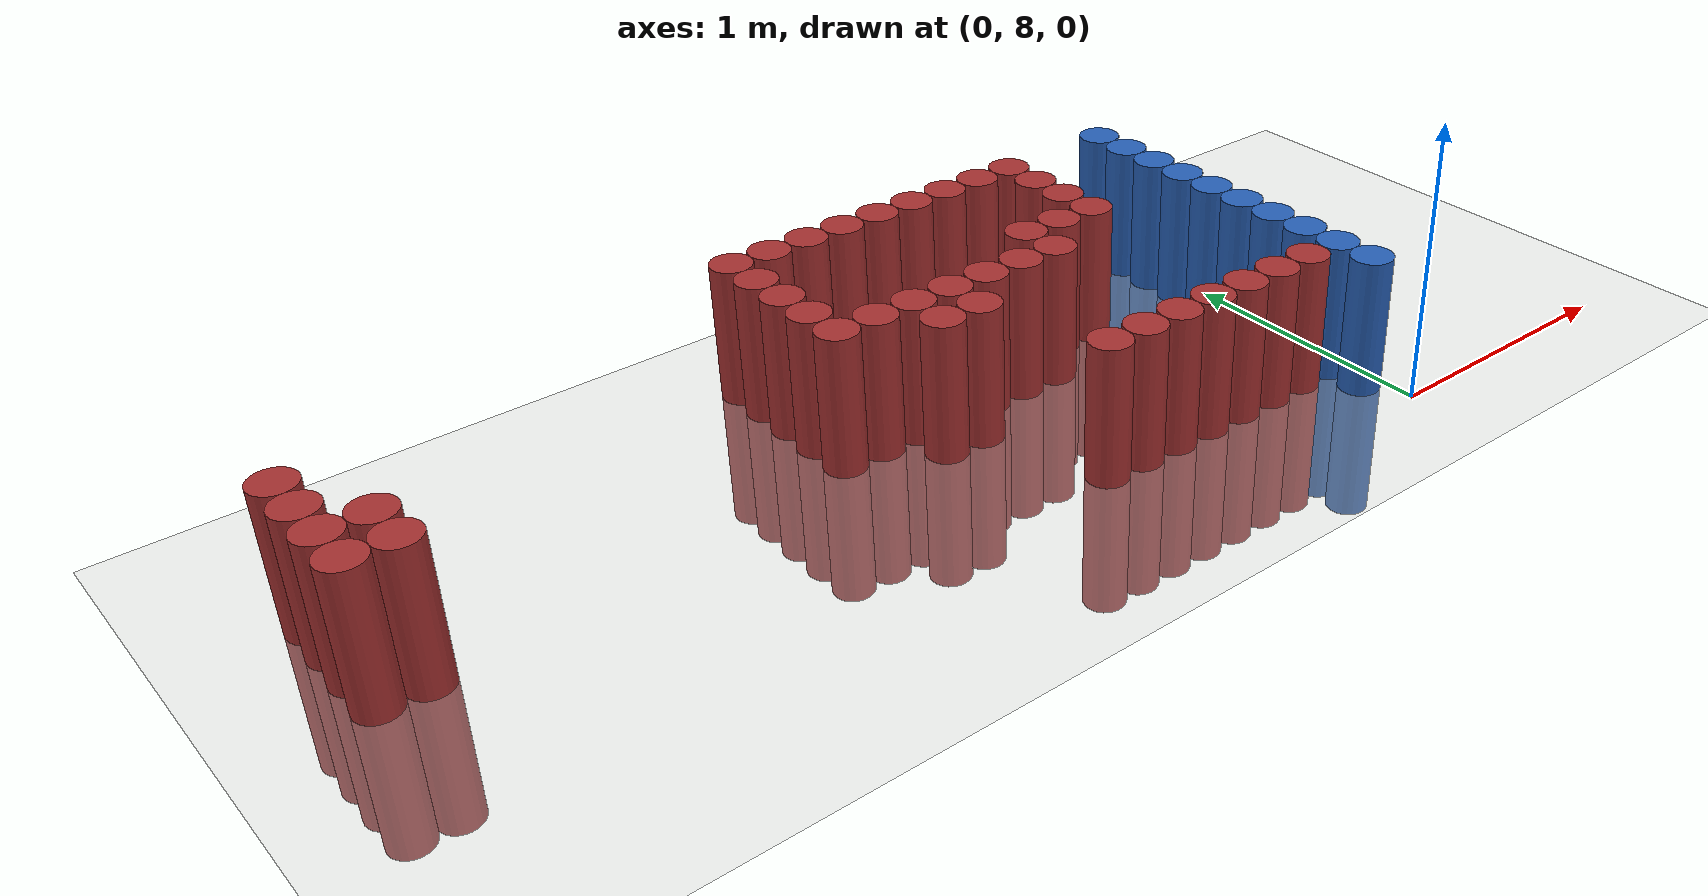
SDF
<sdf version="1.6">
 <world name="default">
  <model name="ground_plane">
   <static>1</static>
   <link name="link">
    <collision name="collision">
     <geometry><plane><normal>0 0 1</normal><size>100 100</size></plane></geometry>
     <surface><friction><ode><mu>100</mu><mu2>50</mu2></ode></friction></surface>
    </collision>
    <visual name="visual">
     <cast_shadows>0</cast_shadows>
     <geometry><plane><normal>0 0 1</normal><size>100 100</size></plane></geometry>
     <material>
      <script><uri>file://media/materials/scripts/gazebo.material</uri><name>Gazebo/Grey</name></script>
     </material>
    </visual>
   </link>
  </model>
  <model name="unit_cylinder_160">
   <static>1</static>
   <pose>-3.375000 8.775000 0.000000 0.000000 0.000000 0.000000</pose>
   <link name="link">
    <inertial>
     <mass>1</mass>
     <inertia><ixx>0.145833</ixx><ixy>0</ixy><ixz>0</ixz><iyy>0.145833</iyy><iyz>0</iyz><izz>0.125</izz></inertia>
    </inertial>
    <collision name="collision">
     <geometry><cylinder><radius>0.075000</radius><length>1</length></cylinder></geometry>
    </collision>
    <visual name="visual">
     <geometry><cylinder><radius>0.075000</radius><length>1</length></cylinder></geometry>
     <material>
      <ambient>0.648000 0.192000 0.192000 1</ambient>
      <diffuse>0.648000 0.192000 0.192000 1</diffuse>
     </material>
     <material>
      <script><name>Gazebo/Grey</name><uri>file://media/materials/scripts/gazebo.material</uri></script>
     </material>
    </visual>
   </link>
  </model>
  <model name="unit_cylinder_161">
   <static>1</static>
   <pose>-3.375000 8.925000 0.000000 0.000000 0.000000 0.000000</pose>
   <link name="link">
    <inertial>
     <mass>1</mass>
     <inertia><ixx>0.145833</ixx><ixy>0</ixy><ixz>0</ixz><iyy>0.145833</iyy><iyz>0</iyz><izz>0.125</izz></inertia>
    </inertial>
    <collision name="collision">
     <geometry><cylinder><radius>0.075000</radius><length>1</length></cylinder></geometry>
    </collision>
    <visual name="visual">
     <geometry><cylinder><radius>0.075000</radius><length>1</length></cylinder></geometry>
     <material>
      <ambient>0.648000 0.192000 0.192000 1</ambient>
      <diffuse>0.648000 0.192000 0.192000 1</diffuse>
     </material>
     <material>
      <script><name>Gazebo/Grey</name><uri>file://media/materials/scripts/gazebo.material</uri></script>
     </material>
    </visual>
   </link>
  </model>
  <model name="unit_cylinder_162">
   <static>1</static>
   <pose>-3.375000 9.075000 0.000000 0.000000 0.000000 0.000000</pose>
   <link name="link">
    <inertial>
     <mass>1</mass>
     <inertia><ixx>0.145833</ixx><ixy>0</ixy><ixz>0</ixz><iyy>0.145833</iyy><iyz>0</iyz><izz>0.125</izz></inertia>
    </inertial>
    <collision name="collision">
     <geometry><cylinder><radius>0.075000</radius><length>1</length></cylinder></geometry>
    </collision>
    <visual name="visual">
     <geometry><cylinder><radius>0.075000</radius><length>1</length></cylinder></geometry>
     <material>
      <ambient>0.648000 0.192000 0.192000 1</ambient>
      <diffuse>0.648000 0.192000 0.192000 1</diffuse>
     </material>
     <material>
      <script><name>Gazebo/Grey</name><uri>file://media/materials/scripts/gazebo.material</uri></script>
     </material>
    </visual>
   </link>
  </model>
  <model name="unit_cylinder_163">
   <static>1</static>
   <pose>-3.375000 9.225000 0.000000 0.000000 0.000000 0.000000</pose>
   <link name="link">
    <inertial>
     <mass>1</mass>
     <inertia><ixx>0.145833</ixx><ixy>0</ixy><ixz>0</ixz><iyy>0.145833</iyy><iyz>0</iyz><izz>0.125</izz></inertia>
    </inertial>
    <collision name="collision">
     <geometry><cylinder><radius>0.075000</radius><length>1</length></cylinder></geometry>
    </collision>
    <visual name="visual">
     <geometry><cylinder><radius>0.075000</radius><length>1</length></cylinder></geometry>
     <material>
      <ambient>0.648000 0.192000 0.192000 1</ambient>
      <diffuse>0.648000 0.192000 0.192000 1</diffuse>
     </material>
     <material>
      <script><name>Gazebo/Grey</name><uri>file://media/materials/scripts/gazebo.material</uri></script>
     </material>
    </visual>
   </link>
  </model>
  <model name="unit_cylinder_167">
   <static>1</static>
   <pose>-3.225000 8.775000 0.000000 0.000000 0.000000 0.000000</pose>
   <link name="link">
    <inertial>
     <mass>1</mass>
     <inertia><ixx>0.145833</ixx><ixy>0</ixy><ixz>0</ixz><iyy>0.145833</iyy><iyz>0</iyz><izz>0.125</izz></inertia>
    </inertial>
    <collision name="collision">
     <geometry><cylinder><radius>0.075000</radius><length>1</length></cylinder></geometry>
    </collision>
    <visual name="visual">
     <geometry><cylinder><radius>0.075000</radius><length>1</length></cylinder></geometry>
     <material>
      <ambient>0.648000 0.192000 0.192000 1</ambient>
      <diffuse>0.648000 0.192000 0.192000 1</diffuse>
     </material>
     <material>
      <script><name>Gazebo/Grey</name><uri>file://media/materials/scripts/gazebo.material</uri></script>
     </material>
    </visual>
   </link>
  </model>
  <model name="unit_cylinder_168">
   <static>1</static>
   <pose>-3.225000 8.925000 0.000000 0.000000 0.000000 0.000000</pose>
   <link name="link">
    <inertial>
     <mass>1</mass>
     <inertia><ixx>0.145833</ixx><ixy>0</ixy><ixz>0</ixz><iyy>0.145833</iyy><iyz>0</iyz><izz>0.125</izz></inertia>
    </inertial>
    <collision name="collision">
     <geometry><cylinder><radius>0.075000</radius><length>1</length></cylinder></geometry>
    </collision>
    <visual name="visual">
     <geometry><cylinder><radius>0.075000</radius><length>1</length></cylinder></geometry>
     <material>
      <ambient>0.648000 0.192000 0.192000 1</ambient>
      <diffuse>0.648000 0.192000 0.192000 1</diffuse>
     </material>
     <material>
      <script><name>Gazebo/Grey</name><uri>file://media/materials/scripts/gazebo.material</uri></script>
     </material>
    </visual>
   </link>
  </model>
  <model name="unit_cylinder_199">
   <static>1</static>
   <pose>-1.725000 8.925000 0.000000 0.000000 0.000000 0.000000</pose>
   <link name="link">
    <inertial>
     <mass>1</mass>
     <inertia><ixx>0.145833</ixx><ixy>0</ixy><ixz>0</ixz><iyy>0.145833</iyy><iyz>0</iyz><izz>0.125</izz></inertia>
    </inertial>
    <collision name="collision">
     <geometry><cylinder><radius>0.075000</radius><length>1</length></cylinder></geometry>
    </collision>
    <visual name="visual">
     <geometry><cylinder><radius>0.075000</radius><length>1</length></cylinder></geometry>
     <material>
      <ambient>0.648000 0.192000 0.192000 1</ambient>
      <diffuse>0.648000 0.192000 0.192000 1</diffuse>
     </material>
     <material>
      <script><name>Gazebo/Grey</name><uri>file://media/materials/scripts/gazebo.material</uri></script>
     </material>
    </visual>
   </link>
  </model>
  <model name="unit_cylinder_200">
   <static>1</static>
   <pose>-1.725000 9.075000 0.000000 0.000000 0.000000 0.000000</pose>
   <link name="link">
    <inertial>
     <mass>1</mass>
     <inertia><ixx>0.145833</ixx><ixy>0</ixy><ixz>0</ixz><iyy>0.145833</iyy><iyz>0</iyz><izz>0.125</izz></inertia>
    </inertial>
    <collision name="collision">
     <geometry><cylinder><radius>0.075000</radius><length>1</length></cylinder></geometry>
    </collision>
    <visual name="visual">
     <geometry><cylinder><radius>0.075000</radius><length>1</length></cylinder></geometry>
     <material>
      <ambient>0.648000 0.192000 0.192000 1</ambient>
      <diffuse>0.648000 0.192000 0.192000 1</diffuse>
     </material>
     <material>
      <script><name>Gazebo/Grey</name><uri>file://media/materials/scripts/gazebo.material</uri></script>
     </material>
    </visual>
   </link>
  </model>
  <model name="unit_cylinder_201">
   <static>1</static>
   <pose>-1.725000 9.225000 0.000000 0.000000 0.000000 0.000000</pose>
   <link name="link">
    <inertial>
     <mass>1</mass>
     <inertia><ixx>0.145833</ixx><ixy>0</ixy><ixz>0</ixz><iyy>0.145833</iyy><iyz>0</iyz><izz>0.125</izz></inertia>
    </inertial>
    <collision name="collision">
     <geometry><cylinder><radius>0.075000</radius><length>1</length></cylinder></geometry>
    </collision>
    <visual name="visual">
     <geometry><cylinder><radius>0.075000</radius><length>1</length></cylinder></geometry>
     <material>
      <ambient>0.648000 0.192000 0.192000 1</ambient>
      <diffuse>0.648000 0.192000 0.192000 1</diffuse>
     </material>
     <material>
      <script><name>Gazebo/Grey</name><uri>file://media/materials/scripts/gazebo.material</uri></script>
     </material>
    </visual>
   </link>
  </model>
  <model name="unit_cylinder_202">
   <static>1</static>
   <pose>-1.725000 9.375000 0.000000 0.000000 0.000000 0.000000</pose>
   <link name="link">
    <inertial>
     <mass>1</mass>
     <inertia><ixx>0.145833</ixx><ixy>0</ixy><ixz>0</ixz><iyy>0.145833</iyy><iyz>0</iyz><izz>0.125</izz></inertia>
    </inertial>
    <collision name="collision">
     <geometry><cylinder><radius>0.075000</radius><length>1</length></cylinder></geometry>
    </collision>
    <visual name="visual">
     <geometry><cylinder><radius>0.075000</radius><length>1</length></cylinder></geometry>
     <material>
      <ambient>0.648000 0.192000 0.192000 1</ambient>
      <diffuse>0.648000 0.192000 0.192000 1</diffuse>
     </material>
     <material>
      <script><name>Gazebo/Grey</name><uri>file://media/materials/scripts/gazebo.material</uri></script>
     </material>
    </visual>
   </link>
  </model>
  <model name="unit_cylinder_203">
   <static>1</static>
   <pose>-1.725000 9.525000 0.000000 0.000000 0.000000 0.000000</pose>
   <link name="link">
    <inertial>
     <mass>1</mass>
     <inertia><ixx>0.145833</ixx><ixy>0</ixy><ixz>0</ixz><iyy>0.145833</iyy><iyz>0</iyz><izz>0.125</izz></inertia>
    </inertial>
    <collision name="collision">
     <geometry><cylinder><radius>0.075000</radius><length>1</length></cylinder></geometry>
    </collision>
    <visual name="visual">
     <geometry><cylinder><radius>0.075000</radius><length>1</length></cylinder></geometry>
     <material>
      <ambient>0.648000 0.192000 0.192000 1</ambient>
      <diffuse>0.648000 0.192000 0.192000 1</diffuse>
     </material>
     <material>
      <script><name>Gazebo/Grey</name><uri>file://media/materials/scripts/gazebo.material</uri></script>
     </material>
    </visual>
   </link>
  </model>
  <model name="unit_cylinder_206">
   <static>1</static>
   <pose>-1.575000 8.925000 0.000000 0.000000 0.000000 0.000000</pose>
   <link name="link">
    <inertial>
     <mass>1</mass>
     <inertia><ixx>0.145833</ixx><ixy>0</ixy><ixz>0</ixz><iyy>0.145833</iyy><iyz>0</iyz><izz>0.125</izz></inertia>
    </inertial>
    <collision name="collision">
     <geometry><cylinder><radius>0.075000</radius><length>1</length></cylinder></geometry>
    </collision>
    <visual name="visual">
     <geometry><cylinder><radius>0.075000</radius><length>1</length></cylinder></geometry>
     <material>
      <ambient>0.648000 0.192000 0.192000 1</ambient>
      <diffuse>0.648000 0.192000 0.192000 1</diffuse>
     </material>
     <material>
      <script><name>Gazebo/Grey</name><uri>file://media/materials/scripts/gazebo.material</uri></script>
     </material>
    </visual>
   </link>
  </model>
  <model name="unit_cylinder_207">
   <static>1</static>
   <pose>-1.575000 9.525000 0.000000 0.000000 0.000000 0.000000</pose>
   <link name="link">
    <inertial>
     <mass>1</mass>
     <inertia><ixx>0.145833</ixx><ixy>0</ixy><ixz>0</ixz><iyy>0.145833</iyy><iyz>0</iyz><izz>0.125</izz></inertia>
    </inertial>
    <collision name="collision">
     <geometry><cylinder><radius>0.075000</radius><length>1</length></cylinder></geometry>
    </collision>
    <visual name="visual">
     <geometry><cylinder><radius>0.075000</radius><length>1</length></cylinder></geometry>
     <material>
      <ambient>0.648000 0.192000 0.192000 1</ambient>
      <diffuse>0.648000 0.192000 0.192000 1</diffuse>
     </material>
     <material>
      <script><name>Gazebo/Grey</name><uri>file://media/materials/scripts/gazebo.material</uri></script>
     </material>
    </visual>
   </link>
  </model>
  <model name="unit_cylinder_210">
   <static>1</static>
   <pose>-1.425000 8.775000 0.000000 0.000000 0.000000 0.000000</pose>
   <link name="link">
    <inertial>
     <mass>1</mass>
     <inertia><ixx>0.145833</ixx><ixy>0</ixy><ixz>0</ixz><iyy>0.145833</iyy><iyz>0</iyz><izz>0.125</izz></inertia>
    </inertial>
    <collision name="collision">
     <geometry><cylinder><radius>0.075000</radius><length>1</length></cylinder></geometry>
    </collision>
    <visual name="visual">
     <geometry><cylinder><radius>0.075000</radius><length>1</length></cylinder></geometry>
     <material>
      <ambient>0.648000 0.192000 0.192000 1</ambient>
      <diffuse>0.648000 0.192000 0.192000 1</diffuse>
     </material>
     <material>
      <script><name>Gazebo/Grey</name><uri>file://media/materials/scripts/gazebo.material</uri></script>
     </material>
    </visual>
   </link>
  </model>
  <model name="unit_cylinder_211">
   <static>1</static>
   <pose>-1.425000 8.925000 0.000000 0.000000 0.000000 0.000000</pose>
   <link name="link">
    <inertial>
     <mass>1</mass>
     <inertia><ixx>0.145833</ixx><ixy>0</ixy><ixz>0</ixz><iyy>0.145833</iyy><iyz>0</iyz><izz>0.125</izz></inertia>
    </inertial>
    <collision name="collision">
     <geometry><cylinder><radius>0.075000</radius><length>1</length></cylinder></geometry>
    </collision>
    <visual name="visual">
     <geometry><cylinder><radius>0.075000</radius><length>1</length></cylinder></geometry>
     <material>
      <ambient>0.648000 0.192000 0.192000 1</ambient>
      <diffuse>0.648000 0.192000 0.192000 1</diffuse>
     </material>
     <material>
      <script><name>Gazebo/Grey</name><uri>file://media/materials/scripts/gazebo.material</uri></script>
     </material>
    </visual>
   </link>
  </model>
  <model name="unit_cylinder_212">
   <static>1</static>
   <pose>-1.425000 9.525000 0.000000 0.000000 0.000000 0.000000</pose>
   <link name="link">
    <inertial>
     <mass>1</mass>
     <inertia><ixx>0.145833</ixx><ixy>0</ixy><ixz>0</ixz><iyy>0.145833</iyy><iyz>0</iyz><izz>0.125</izz></inertia>
    </inertial>
    <collision name="collision">
     <geometry><cylinder><radius>0.075000</radius><length>1</length></cylinder></geometry>
    </collision>
    <visual name="visual">
     <geometry><cylinder><radius>0.075000</radius><length>1</length></cylinder></geometry>
     <material>
      <ambient>0.648000 0.192000 0.192000 1</ambient>
      <diffuse>0.648000 0.192000 0.192000 1</diffuse>
     </material>
     <material>
      <script><name>Gazebo/Grey</name><uri>file://media/materials/scripts/gazebo.material</uri></script>
     </material>
    </visual>
   </link>
  </model>
  <model name="unit_cylinder_215">
   <static>1</static>
   <pose>-1.275000 8.775000 0.000000 0.000000 0.000000 0.000000</pose>
   <link name="link">
    <inertial>
     <mass>1</mass>
     <inertia><ixx>0.145833</ixx><ixy>0</ixy><ixz>0</ixz><iyy>0.145833</iyy><iyz>0</iyz><izz>0.125</izz></inertia>
    </inertial>
    <collision name="collision">
     <geometry><cylinder><radius>0.075000</radius><length>1</length></cylinder></geometry>
    </collision>
    <visual name="visual">
     <geometry><cylinder><radius>0.075000</radius><length>1</length></cylinder></geometry>
     <material>
      <ambient>0.648000 0.192000 0.192000 1</ambient>
      <diffuse>0.648000 0.192000 0.192000 1</diffuse>
     </material>
     <material>
      <script><name>Gazebo/Grey</name><uri>file://media/materials/scripts/gazebo.material</uri></script>
     </material>
    </visual>
   </link>
  </model>
  <model name="unit_cylinder_216">
   <static>1</static>
   <pose>-1.275000 8.925000 0.000000 0.000000 0.000000 0.000000</pose>
   <link name="link">
    <inertial>
     <mass>1</mass>
     <inertia><ixx>0.145833</ixx><ixy>0</ixy><ixz>0</ixz><iyy>0.145833</iyy><iyz>0</iyz><izz>0.125</izz></inertia>
    </inertial>
    <collision name="collision">
     <geometry><cylinder><radius>0.075000</radius><length>1</length></cylinder></geometry>
    </collision>
    <visual name="visual">
     <geometry><cylinder><radius>0.075000</radius><length>1</length></cylinder></geometry>
     <material>
      <ambient>0.648000 0.192000 0.192000 1</ambient>
      <diffuse>0.648000 0.192000 0.192000 1</diffuse>
     </material>
     <material>
      <script><name>Gazebo/Grey</name><uri>file://media/materials/scripts/gazebo.material</uri></script>
     </material>
    </visual>
   </link>
  </model>
  <model name="unit_cylinder_217">
   <static>1</static>
   <pose>-1.275000 9.525000 0.000000 0.000000 0.000000 0.000000</pose>
   <link name="link">
    <inertial>
     <mass>1</mass>
     <inertia><ixx>0.145833</ixx><ixy>0</ixy><ixz>0</ixz><iyy>0.145833</iyy><iyz>0</iyz><izz>0.125</izz></inertia>
    </inertial>
    <collision name="collision">
     <geometry><cylinder><radius>0.075000</radius><length>1</length></cylinder></geometry>
    </collision>
    <visual name="visual">
     <geometry><cylinder><radius>0.075000</radius><length>1</length></cylinder></geometry>
     <material>
      <ambient>0.648000 0.192000 0.192000 1</ambient>
      <diffuse>0.648000 0.192000 0.192000 1</diffuse>
     </material>
     <material>
      <script><name>Gazebo/Grey</name><uri>file://media/materials/scripts/gazebo.material</uri></script>
     </material>
    </visual>
   </link>
  </model>
  <model name="unit_cylinder_220">
   <static>1</static>
   <pose>-1.125000 8.325000 0.000000 0.000000 0.000000 0.000000</pose>
   <link name="link">
    <inertial>
     <mass>1</mass>
     <inertia><ixx>0.145833</ixx><ixy>0</ixy><ixz>0</ixz><iyy>0.145833</iyy><iyz>0</iyz><izz>0.125</izz></inertia>
    </inertial>
    <collision name="collision">
     <geometry><cylinder><radius>0.075000</radius><length>1</length></cylinder></geometry>
    </collision>
    <visual name="visual">
     <geometry><cylinder><radius>0.075000</radius><length>1</length></cylinder></geometry>
     <material>
      <ambient>0.648000 0.192000 0.192000 1</ambient>
      <diffuse>0.648000 0.192000 0.192000 1</diffuse>
     </material>
     <material>
      <script><name>Gazebo/Grey</name><uri>file://media/materials/scripts/gazebo.material</uri></script>
     </material>
    </visual>
   </link>
  </model>
  <model name="unit_cylinder_221">
   <static>1</static>
   <pose>-1.125000 8.925000 0.000000 0.000000 0.000000 0.000000</pose>
   <link name="link">
    <inertial>
     <mass>1</mass>
     <inertia><ixx>0.145833</ixx><ixy>0</ixy><ixz>0</ixz><iyy>0.145833</iyy><iyz>0</iyz><izz>0.125</izz></inertia>
    </inertial>
    <collision name="collision">
     <geometry><cylinder><radius>0.075000</radius><length>1</length></cylinder></geometry>
    </collision>
    <visual name="visual">
     <geometry><cylinder><radius>0.075000</radius><length>1</length></cylinder></geometry>
     <material>
      <ambient>0.648000 0.192000 0.192000 1</ambient>
      <diffuse>0.648000 0.192000 0.192000 1</diffuse>
     </material>
     <material>
      <script><name>Gazebo/Grey</name><uri>file://media/materials/scripts/gazebo.material</uri></script>
     </material>
    </visual>
   </link>
  </model>
  <model name="unit_cylinder_222">
   <static>1</static>
   <pose>-1.125000 9.525000 0.000000 0.000000 0.000000 0.000000</pose>
   <link name="link">
    <inertial>
     <mass>1</mass>
     <inertia><ixx>0.145833</ixx><ixy>0</ixy><ixz>0</ixz><iyy>0.145833</iyy><iyz>0</iyz><izz>0.125</izz></inertia>
    </inertial>
    <collision name="collision">
     <geometry><cylinder><radius>0.075000</radius><length>1</length></cylinder></geometry>
    </collision>
    <visual name="visual">
     <geometry><cylinder><radius>0.075000</radius><length>1</length></cylinder></geometry>
     <material>
      <ambient>0.648000 0.192000 0.192000 1</ambient>
      <diffuse>0.648000 0.192000 0.192000 1</diffuse>
     </material>
     <material>
      <script><name>Gazebo/Grey</name><uri>file://media/materials/scripts/gazebo.material</uri></script>
     </material>
    </visual>
   </link>
  </model>
  <model name="unit_cylinder_230">
   <static>1</static>
   <pose>-0.975000 8.325000 0.000000 0.000000 0.000000 0.000000</pose>
   <link name="link">
    <inertial>
     <mass>1</mass>
     <inertia><ixx>0.145833</ixx><ixy>0</ixy><ixz>0</ixz><iyy>0.145833</iyy><iyz>0</iyz><izz>0.125</izz></inertia>
    </inertial>
    <collision name="collision">
     <geometry><cylinder><radius>0.075000</radius><length>1</length></cylinder></geometry>
    </collision>
    <visual name="visual">
     <geometry><cylinder><radius>0.075000</radius><length>1</length></cylinder></geometry>
     <material>
      <ambient>0.648000 0.192000 0.192000 1</ambient>
      <diffuse>0.648000 0.192000 0.192000 1</diffuse>
     </material>
     <material>
      <script><name>Gazebo/Grey</name><uri>file://media/materials/scripts/gazebo.material</uri></script>
     </material>
    </visual>
   </link>
  </model>
  <model name="unit_cylinder_231">
   <static>1</static>
   <pose>-0.975000 8.925000 0.000000 0.000000 0.000000 0.000000</pose>
   <link name="link">
    <inertial>
     <mass>1</mass>
     <inertia><ixx>0.145833</ixx><ixy>0</ixy><ixz>0</ixz><iyy>0.145833</iyy><iyz>0</iyz><izz>0.125</izz></inertia>
    </inertial>
    <collision name="collision">
     <geometry><cylinder><radius>0.075000</radius><length>1</length></cylinder></geometry>
    </collision>
    <visual name="visual">
     <geometry><cylinder><radius>0.075000</radius><length>1</length></cylinder></geometry>
     <material>
      <ambient>0.648000 0.192000 0.192000 1</ambient>
      <diffuse>0.648000 0.192000 0.192000 1</diffuse>
     </material>
     <material>
      <script><name>Gazebo/Grey</name><uri>file://media/materials/scripts/gazebo.material</uri></script>
     </material>
    </visual>
   </link>
  </model>
  <model name="unit_cylinder_232">
   <static>1</static>
   <pose>-0.975000 9.525000 0.000000 0.000000 0.000000 0.000000</pose>
   <link name="link">
    <inertial>
     <mass>1</mass>
     <inertia><ixx>0.145833</ixx><ixy>0</ixy><ixz>0</ixz><iyy>0.145833</iyy><iyz>0</iyz><izz>0.125</izz></inertia>
    </inertial>
    <collision name="collision">
     <geometry><cylinder><radius>0.075000</radius><length>1</length></cylinder></geometry>
    </collision>
    <visual name="visual">
     <geometry><cylinder><radius>0.075000</radius><length>1</length></cylinder></geometry>
     <material>
      <ambient>0.648000 0.192000 0.192000 1</ambient>
      <diffuse>0.648000 0.192000 0.192000 1</diffuse>
     </material>
     <material>
      <script><name>Gazebo/Grey</name><uri>file://media/materials/scripts/gazebo.material</uri></script>
     </material>
    </visual>
   </link>
  </model>
  <model name="unit_cylinder_237">
   <static>1</static>
   <pose>-0.825000 8.325000 0.000000 0.000000 0.000000 0.000000</pose>
   <link name="link">
    <inertial>
     <mass>1</mass>
     <inertia><ixx>0.145833</ixx><ixy>0</ixy><ixz>0</ixz><iyy>0.145833</iyy><iyz>0</iyz><izz>0.125</izz></inertia>
    </inertial>
    <collision name="collision">
     <geometry><cylinder><radius>0.075000</radius><length>1</length></cylinder></geometry>
    </collision>
    <visual name="visual">
     <geometry><cylinder><radius>0.075000</radius><length>1</length></cylinder></geometry>
     <material>
      <ambient>0.648000 0.192000 0.192000 1</ambient>
      <diffuse>0.648000 0.192000 0.192000 1</diffuse>
     </material>
     <material>
      <script><name>Gazebo/Grey</name><uri>file://media/materials/scripts/gazebo.material</uri></script>
     </material>
    </visual>
   </link>
  </model>
  <model name="unit_cylinder_238">
   <static>1</static>
   <pose>-0.825000 8.925000 0.000000 0.000000 0.000000 0.000000</pose>
   <link name="link">
    <inertial>
     <mass>1</mass>
     <inertia><ixx>0.145833</ixx><ixy>0</ixy><ixz>0</ixz><iyy>0.145833</iyy><iyz>0</iyz><izz>0.125</izz></inertia>
    </inertial>
    <collision name="collision">
     <geometry><cylinder><radius>0.075000</radius><length>1</length></cylinder></geometry>
    </collision>
    <visual name="visual">
     <geometry><cylinder><radius>0.075000</radius><length>1</length></cylinder></geometry>
     <material>
      <ambient>0.648000 0.192000 0.192000 1</ambient>
      <diffuse>0.648000 0.192000 0.192000 1</diffuse>
     </material>
     <material>
      <script><name>Gazebo/Grey</name><uri>file://media/materials/scripts/gazebo.material</uri></script>
     </material>
    </visual>
   </link>
  </model>
  <model name="unit_cylinder_239">
   <static>1</static>
   <pose>-0.825000 9.075000 0.000000 0.000000 0.000000 0.000000</pose>
   <link name="link">
    <inertial>
     <mass>1</mass>
     <inertia><ixx>0.145833</ixx><ixy>0</ixy><ixz>0</ixz><iyy>0.145833</iyy><iyz>0</iyz><izz>0.125</izz></inertia>
    </inertial>
    <collision name="collision">
     <geometry><cylinder><radius>0.075000</radius><length>1</length></cylinder></geometry>
    </collision>
    <visual name="visual">
     <geometry><cylinder><radius>0.075000</radius><length>1</length></cylinder></geometry>
     <material>
      <ambient>0.648000 0.192000 0.192000 1</ambient>
      <diffuse>0.648000 0.192000 0.192000 1</diffuse>
     </material>
     <material>
      <script><name>Gazebo/Grey</name><uri>file://media/materials/scripts/gazebo.material</uri></script>
     </material>
    </visual>
   </link>
  </model>
  <model name="unit_cylinder_240">
   <static>1</static>
   <pose>-0.825000 9.525000 0.000000 0.000000 0.000000 0.000000</pose>
   <link name="link">
    <inertial>
     <mass>1</mass>
     <inertia><ixx>0.145833</ixx><ixy>0</ixy><ixz>0</ixz><iyy>0.145833</iyy><iyz>0</iyz><izz>0.125</izz></inertia>
    </inertial>
    <collision name="collision">
     <geometry><cylinder><radius>0.075000</radius><length>1</length></cylinder></geometry>
    </collision>
    <visual name="visual">
     <geometry><cylinder><radius>0.075000</radius><length>1</length></cylinder></geometry>
     <material>
      <ambient>0.648000 0.192000 0.192000 1</ambient>
      <diffuse>0.648000 0.192000 0.192000 1</diffuse>
     </material>
     <material>
      <script><name>Gazebo/Grey</name><uri>file://media/materials/scripts/gazebo.material</uri></script>
     </material>
    </visual>
   </link>
  </model>
  <model name="unit_cylinder_244">
   <static>1</static>
   <pose>-0.675000 8.325000 0.000000 0.000000 0.000000 0.000000</pose>
   <link name="link">
    <inertial>
     <mass>1</mass>
     <inertia><ixx>0.145833</ixx><ixy>0</ixy><ixz>0</ixz><iyy>0.145833</iyy><iyz>0</iyz><izz>0.125</izz></inertia>
    </inertial>
    <collision name="collision">
     <geometry><cylinder><radius>0.075000</radius><length>1</length></cylinder></geometry>
    </collision>
    <visual name="visual">
     <geometry><cylinder><radius>0.075000</radius><length>1</length></cylinder></geometry>
     <material>
      <ambient>0.648000 0.192000 0.192000 1</ambient>
      <diffuse>0.648000 0.192000 0.192000 1</diffuse>
     </material>
     <material>
      <script><name>Gazebo/Grey</name><uri>file://media/materials/scripts/gazebo.material</uri></script>
     </material>
    </visual>
   </link>
  </model>
  <model name="unit_cylinder_245">
   <static>1</static>
   <pose>-0.675000 9.075000 0.000000 0.000000 0.000000 0.000000</pose>
   <link name="link">
    <inertial>
     <mass>1</mass>
     <inertia><ixx>0.145833</ixx><ixy>0</ixy><ixz>0</ixz><iyy>0.145833</iyy><iyz>0</iyz><izz>0.125</izz></inertia>
    </inertial>
    <collision name="collision">
     <geometry><cylinder><radius>0.075000</radius><length>1</length></cylinder></geometry>
    </collision>
    <visual name="visual">
     <geometry><cylinder><radius>0.075000</radius><length>1</length></cylinder></geometry>
     <material>
      <ambient>0.648000 0.192000 0.192000 1</ambient>
      <diffuse>0.648000 0.192000 0.192000 1</diffuse>
     </material>
     <material>
      <script><name>Gazebo/Grey</name><uri>file://media/materials/scripts/gazebo.material</uri></script>
     </material>
    </visual>
   </link>
  </model>
  <model name="unit_cylinder_246">
   <static>1</static>
   <pose>-0.675000 9.525000 0.000000 0.000000 0.000000 0.000000</pose>
   <link name="link">
    <inertial>
     <mass>1</mass>
     <inertia><ixx>0.145833</ixx><ixy>0</ixy><ixz>0</ixz><iyy>0.145833</iyy><iyz>0</iyz><izz>0.125</izz></inertia>
    </inertial>
    <collision name="collision">
     <geometry><cylinder><radius>0.075000</radius><length>1</length></cylinder></geometry>
    </collision>
    <visual name="visual">
     <geometry><cylinder><radius>0.075000</radius><length>1</length></cylinder></geometry>
     <material>
      <ambient>0.648000 0.192000 0.192000 1</ambient>
      <diffuse>0.648000 0.192000 0.192000 1</diffuse>
     </material>
     <material>
      <script><name>Gazebo/Grey</name><uri>file://media/materials/scripts/gazebo.material</uri></script>
     </material>
    </visual>
   </link>
  </model>
  <model name="unit_cylinder_251">
   <static>1</static>
   <pose>-0.525000 8.325000 0.000000 0.000000 0.000000 0.000000</pose>
   <link name="link">
    <inertial>
     <mass>1</mass>
     <inertia><ixx>0.145833</ixx><ixy>0</ixy><ixz>0</ixz><iyy>0.145833</iyy><iyz>0</iyz><izz>0.125</izz></inertia>
    </inertial>
    <collision name="collision">
     <geometry><cylinder><radius>0.075000</radius><length>1</length></cylinder></geometry>
    </collision>
    <visual name="visual">
     <geometry><cylinder><radius>0.075000</radius><length>1</length></cylinder></geometry>
     <material>
      <ambient>0.648000 0.192000 0.192000 1</ambient>
      <diffuse>0.648000 0.192000 0.192000 1</diffuse>
     </material>
     <material>
      <script><name>Gazebo/Grey</name><uri>file://media/materials/scripts/gazebo.material</uri></script>
     </material>
    </visual>
   </link>
  </model>
  <model name="unit_cylinder_252">
   <static>1</static>
   <pose>-0.525000 9.075000 0.000000 0.000000 0.000000 0.000000</pose>
   <link name="link">
    <inertial>
     <mass>1</mass>
     <inertia><ixx>0.145833</ixx><ixy>0</ixy><ixz>0</ixz><iyy>0.145833</iyy><iyz>0</iyz><izz>0.125</izz></inertia>
    </inertial>
    <collision name="collision">
     <geometry><cylinder><radius>0.075000</radius><length>1</length></cylinder></geometry>
    </collision>
    <visual name="visual">
     <geometry><cylinder><radius>0.075000</radius><length>1</length></cylinder></geometry>
     <material>
      <ambient>0.648000 0.192000 0.192000 1</ambient>
      <diffuse>0.648000 0.192000 0.192000 1</diffuse>
     </material>
     <material>
      <script><name>Gazebo/Grey</name><uri>file://media/materials/scripts/gazebo.material</uri></script>
     </material>
    </visual>
   </link>
  </model>
  <model name="unit_cylinder_253">
   <static>1</static>
   <pose>-0.525000 9.225000 0.000000 0.000000 0.000000 0.000000</pose>
   <link name="link">
    <inertial>
     <mass>1</mass>
     <inertia><ixx>0.145833</ixx><ixy>0</ixy><ixz>0</ixz><iyy>0.145833</iyy><iyz>0</iyz><izz>0.125</izz></inertia>
    </inertial>
    <collision name="collision">
     <geometry><cylinder><radius>0.075000</radius><length>1</length></cylinder></geometry>
    </collision>
    <visual name="visual">
     <geometry><cylinder><radius>0.075000</radius><length>1</length></cylinder></geometry>
     <material>
      <ambient>0.648000 0.192000 0.192000 1</ambient>
      <diffuse>0.648000 0.192000 0.192000 1</diffuse>
     </material>
     <material>
      <script><name>Gazebo/Grey</name><uri>file://media/materials/scripts/gazebo.material</uri></script>
     </material>
    </visual>
   </link>
  </model>
  <model name="unit_cylinder_254">
   <static>1</static>
   <pose>-0.525000 9.375000 0.000000 0.000000 0.000000 0.000000</pose>
   <link name="link">
    <inertial>
     <mass>1</mass>
     <inertia><ixx>0.145833</ixx><ixy>0</ixy><ixz>0</ixz><iyy>0.145833</iyy><iyz>0</iyz><izz>0.125</izz></inertia>
    </inertial>
    <collision name="collision">
     <geometry><cylinder><radius>0.075000</radius><length>1</length></cylinder></geometry>
    </collision>
    <visual name="visual">
     <geometry><cylinder><radius>0.075000</radius><length>1</length></cylinder></geometry>
     <material>
      <ambient>0.648000 0.192000 0.192000 1</ambient>
      <diffuse>0.648000 0.192000 0.192000 1</diffuse>
     </material>
     <material>
      <script><name>Gazebo/Grey</name><uri>file://media/materials/scripts/gazebo.material</uri></script>
     </material>
    </visual>
   </link>
  </model>
  <model name="unit_cylinder_255">
   <static>1</static>
   <pose>-0.525000 9.525000 0.000000 0.000000 0.000000 0.000000</pose>
   <link name="link">
    <inertial>
     <mass>1</mass>
     <inertia><ixx>0.145833</ixx><ixy>0</ixy><ixz>0</ixz><iyy>0.145833</iyy><iyz>0</iyz><izz>0.125</izz></inertia>
    </inertial>
    <collision name="collision">
     <geometry><cylinder><radius>0.075000</radius><length>1</length></cylinder></geometry>
    </collision>
    <visual name="visual">
     <geometry><cylinder><radius>0.075000</radius><length>1</length></cylinder></geometry>
     <material>
      <ambient>0.648000 0.192000 0.192000 1</ambient>
      <diffuse>0.648000 0.192000 0.192000 1</diffuse>
     </material>
     <material>
      <script><name>Gazebo/Grey</name><uri>file://media/materials/scripts/gazebo.material</uri></script>
     </material>
    </visual>
   </link>
  </model>
  <model name="unit_cylinder_259">
   <static>1</static>
   <pose>-0.375000 8.325000 0.000000 0.000000 0.000000 0.000000</pose>
   <link name="link">
    <inertial>
     <mass>1</mass>
     <inertia><ixx>0.145833</ixx><ixy>0</ixy><ixz>0</ixz><iyy>0.145833</iyy><iyz>0</iyz><izz>0.125</izz></inertia>
    </inertial>
    <collision name="collision">
     <geometry><cylinder><radius>0.075000</radius><length>1</length></cylinder></geometry>
    </collision>
    <visual name="visual">
     <geometry><cylinder><radius>0.075000</radius><length>1</length></cylinder></geometry>
     <material>
      <ambient>0.648000 0.192000 0.192000 1</ambient>
      <diffuse>0.648000 0.192000 0.192000 1</diffuse>
     </material>
     <material>
      <script><name>Gazebo/Grey</name><uri>file://media/materials/scripts/gazebo.material</uri></script>
     </material>
    </visual>
   </link>
  </model>
  <model name="unit_cylinder_263">
   <static>1</static>
   <pose>-0.225000 8.325000 0.000000 0.000000 0.000000 0.000000</pose>
   <link name="link">
    <inertial>
     <mass>1</mass>
     <inertia><ixx>0.145833</ixx><ixy>0</ixy><ixz>0</ixz><iyy>0.145833</iyy><iyz>0</iyz><izz>0.125</izz></inertia>
    </inertial>
    <collision name="collision">
     <geometry><cylinder><radius>0.075000</radius><length>1</length></cylinder></geometry>
    </collision>
    <visual name="visual">
     <geometry><cylinder><radius>0.075000</radius><length>1</length></cylinder></geometry>
     <material>
      <ambient>0.648000 0.192000 0.192000 1</ambient>
      <diffuse>0.648000 0.192000 0.192000 1</diffuse>
     </material>
     <material>
      <script><name>Gazebo/Grey</name><uri>file://media/materials/scripts/gazebo.material</uri></script>
     </material>
    </visual>
   </link>
  </model>
  <model name="unit_cylinder_284">
   <static>1</static>
   <pose>-0.075000 8.175000 0.000000 0.000000 0.000000 0.000000</pose>
   <link name="link">
    <inertial>
     <mass>1</mass>
     <inertia><ixx>0.145833</ixx><ixy>0</ixy><ixz>0</ixz><iyy>0.145833</iyy><iyz>0</iyz><izz>0.125</izz></inertia>
    </inertial>
    <collision name="collision">
     <geometry><cylinder><radius>0.075000</radius><length>1</length></cylinder></geometry>
    </collision>
    <visual name="visual">
     <geometry><cylinder><radius>0.075000</radius><length>1</length></cylinder></geometry>
     <material>
      <ambient>0.152000 0.379000 0.720000 1</ambient>
      <diffuse>0.152000 0.379000 0.720000 1</diffuse>
     </material>
     <material>
      <script><name>Gazebo/Grey</name><uri>file://media/materials/scripts/gazebo.material</uri></script>
     </material>
    </visual>
   </link>
  </model>
  <model name="unit_cylinder_285">
   <static>1</static>
   <pose>-0.075000 8.325000 0.000000 0.000000 0.000000 0.000000</pose>
   <link name="link">
    <inertial>
     <mass>1</mass>
     <inertia><ixx>0.145833</ixx><ixy>0</ixy><ixz>0</ixz><iyy>0.145833</iyy><iyz>0</iyz><izz>0.125</izz></inertia>
    </inertial>
    <collision name="collision">
     <geometry><cylinder><radius>0.075000</radius><length>1</length></cylinder></geometry>
    </collision>
    <visual name="visual">
     <geometry><cylinder><radius>0.075000</radius><length>1</length></cylinder></geometry>
     <material>
      <ambient>0.152000 0.379000 0.720000 1</ambient>
      <diffuse>0.152000 0.379000 0.720000 1</diffuse>
     </material>
     <material>
      <script><name>Gazebo/Grey</name><uri>file://media/materials/scripts/gazebo.material</uri></script>
     </material>
    </visual>
   </link>
  </model>
  <model name="unit_cylinder_286">
   <static>1</static>
   <pose>-0.075000 8.475000 0.000000 0.000000 0.000000 0.000000</pose>
   <link name="link">
    <inertial>
     <mass>1</mass>
     <inertia><ixx>0.145833</ixx><ixy>0</ixy><ixz>0</ixz><iyy>0.145833</iyy><iyz>0</iyz><izz>0.125</izz></inertia>
    </inertial>
    <collision name="collision">
     <geometry><cylinder><radius>0.075000</radius><length>1</length></cylinder></geometry>
    </collision>
    <visual name="visual">
     <geometry><cylinder><radius>0.075000</radius><length>1</length></cylinder></geometry>
     <material>
      <ambient>0.152000 0.379000 0.720000 1</ambient>
      <diffuse>0.152000 0.379000 0.720000 1</diffuse>
     </material>
     <material>
      <script><name>Gazebo/Grey</name><uri>file://media/materials/scripts/gazebo.material</uri></script>
     </material>
    </visual>
   </link>
  </model>
  <model name="unit_cylinder_287">
   <static>1</static>
   <pose>-0.075000 8.625000 0.000000 0.000000 0.000000 0.000000</pose>
   <link name="link">
    <inertial>
     <mass>1</mass>
     <inertia><ixx>0.145833</ixx><ixy>0</ixy><ixz>0</ixz><iyy>0.145833</iyy><iyz>0</iyz><izz>0.125</izz></inertia>
    </inertial>
    <collision name="collision">
     <geometry><cylinder><radius>0.075000</radius><length>1</length></cylinder></geometry>
    </collision>
    <visual name="visual">
     <geometry><cylinder><radius>0.075000</radius><length>1</length></cylinder></geometry>
     <material>
      <ambient>0.152000 0.379000 0.720000 1</ambient>
      <diffuse>0.152000 0.379000 0.720000 1</diffuse>
     </material>
     <material>
      <script><name>Gazebo/Grey</name><uri>file://media/materials/scripts/gazebo.material</uri></script>
     </material>
    </visual>
   </link>
  </model>
  <model name="unit_cylinder_288">
   <static>1</static>
   <pose>-0.075000 8.775000 0.000000 0.000000 0.000000 0.000000</pose>
   <link name="link">
    <inertial>
     <mass>1</mass>
     <inertia><ixx>0.145833</ixx><ixy>0</ixy><ixz>0</ixz><iyy>0.145833</iyy><iyz>0</iyz><izz>0.125</izz></inertia>
    </inertial>
    <collision name="collision">
     <geometry><cylinder><radius>0.075000</radius><length>1</length></cylinder></geometry>
    </collision>
    <visual name="visual">
     <geometry><cylinder><radius>0.075000</radius><length>1</length></cylinder></geometry>
     <material>
      <ambient>0.152000 0.379000 0.720000 1</ambient>
      <diffuse>0.152000 0.379000 0.720000 1</diffuse>
     </material>
     <material>
      <script><name>Gazebo/Grey</name><uri>file://media/materials/scripts/gazebo.material</uri></script>
     </material>
    </visual>
   </link>
  </model>
  <model name="unit_cylinder_289">
   <static>1</static>
   <pose>-0.075000 8.925000 0.000000 0.000000 0.000000 0.000000</pose>
   <link name="link">
    <inertial>
     <mass>1</mass>
     <inertia><ixx>0.145833</ixx><ixy>0</ixy><ixz>0</ixz><iyy>0.145833</iyy><iyz>0</iyz><izz>0.125</izz></inertia>
    </inertial>
    <collision name="collision">
     <geometry><cylinder><radius>0.075000</radius><length>1</length></cylinder></geometry>
    </collision>
    <visual name="visual">
     <geometry><cylinder><radius>0.075000</radius><length>1</length></cylinder></geometry>
     <material>
      <ambient>0.152000 0.379000 0.720000 1</ambient>
      <diffuse>0.152000 0.379000 0.720000 1</diffuse>
     </material>
     <material>
      <script><name>Gazebo/Grey</name><uri>file://media/materials/scripts/gazebo.material</uri></script>
     </material>
    </visual>
   </link>
  </model>
  <model name="unit_cylinder_290">
   <static>1</static>
   <pose>-0.075000 9.075000 0.000000 0.000000 0.000000 0.000000</pose>
   <link name="link">
    <inertial>
     <mass>1</mass>
     <inertia><ixx>0.145833</ixx><ixy>0</ixy><ixz>0</ixz><iyy>0.145833</iyy><iyz>0</iyz><izz>0.125</izz></inertia>
    </inertial>
    <collision name="collision">
     <geometry><cylinder><radius>0.075000</radius><length>1</length></cylinder></geometry>
    </collision>
    <visual name="visual">
     <geometry><cylinder><radius>0.075000</radius><length>1</length></cylinder></geometry>
     <material>
      <ambient>0.152000 0.379000 0.720000 1</ambient>
      <diffuse>0.152000 0.379000 0.720000 1</diffuse>
     </material>
     <material>
      <script><name>Gazebo/Grey</name><uri>file://media/materials/scripts/gazebo.material</uri></script>
     </material>
    </visual>
   </link>
  </model>
  <model name="unit_cylinder_291">
   <static>1</static>
   <pose>-0.075000 9.225000 0.000000 0.000000 0.000000 0.000000</pose>
   <link name="link">
    <inertial>
     <mass>1</mass>
     <inertia><ixx>0.145833</ixx><ixy>0</ixy><ixz>0</ixz><iyy>0.145833</iyy><iyz>0</iyz><izz>0.125</izz></inertia>
    </inertial>
    <collision name="collision">
     <geometry><cylinder><radius>0.075000</radius><length>1</length></cylinder></geometry>
    </collision>
    <visual name="visual">
     <geometry><cylinder><radius>0.075000</radius><length>1</length></cylinder></geometry>
     <material>
      <ambient>0.152000 0.379000 0.720000 1</ambient>
      <diffuse>0.152000 0.379000 0.720000 1</diffuse>
     </material>
     <material>
      <script><name>Gazebo/Grey</name><uri>file://media/materials/scripts/gazebo.material</uri></script>
     </material>
    </visual>
   </link>
  </model>
  <model name="unit_cylinder_292">
   <static>1</static>
   <pose>-0.075000 9.375000 0.000000 0.000000 0.000000 0.000000</pose>
   <link name="link">
    <inertial>
     <mass>1</mass>
     <inertia><ixx>0.145833</ixx><ixy>0</ixy><ixz>0</ixz><iyy>0.145833</iyy><iyz>0</iyz><izz>0.125</izz></inertia>
    </inertial>
    <collision name="collision">
     <geometry><cylinder><radius>0.075000</radius><length>1</length></cylinder></geometry>
    </collision>
    <visual name="visual">
     <geometry><cylinder><radius>0.075000</radius><length>1</length></cylinder></geometry>
     <material>
      <ambient>0.152000 0.379000 0.720000 1</ambient>
      <diffuse>0.152000 0.379000 0.720000 1</diffuse>
     </material>
     <material>
      <script><name>Gazebo/Grey</name><uri>file://media/materials/scripts/gazebo.material</uri></script>
     </material>
    </visual>
   </link>
  </model>
  <model name="unit_cylinder_293">
   <static>1</static>
   <pose>-0.075000 9.525000 0.000000 0.000000 0.000000 0.000000</pose>
   <link name="link">
    <inertial>
     <mass>1</mass>
     <inertia><ixx>0.145833</ixx><ixy>0</ixy><ixz>0</ixz><iyy>0.145833</iyy><iyz>0</iyz><izz>0.125</izz></inertia>
    </inertial>
    <collision name="collision">
     <geometry><cylinder><radius>0.075000</radius><length>1</length></cylinder></geometry>
    </collision>
    <visual name="visual">
     <geometry><cylinder><radius>0.075000</radius><length>1</length></cylinder></geometry>
     <material>
      <ambient>0.152000 0.379000 0.720000 1</ambient>
      <diffuse>0.152000 0.379000 0.720000 1</diffuse>
     </material>
     <material>
      <script><name>Gazebo/Grey</name><uri>file://media/materials/scripts/gazebo.material</uri></script>
     </material>
    </visual>
   </link>
  </model>
 </world>
</sdf>
